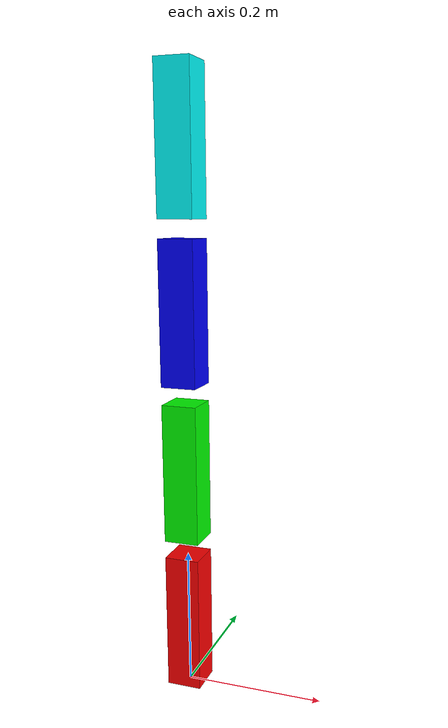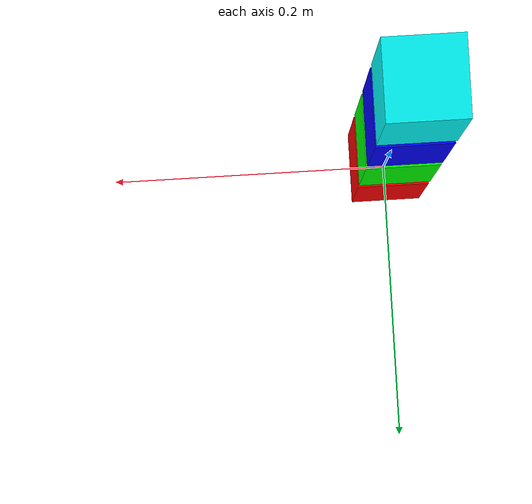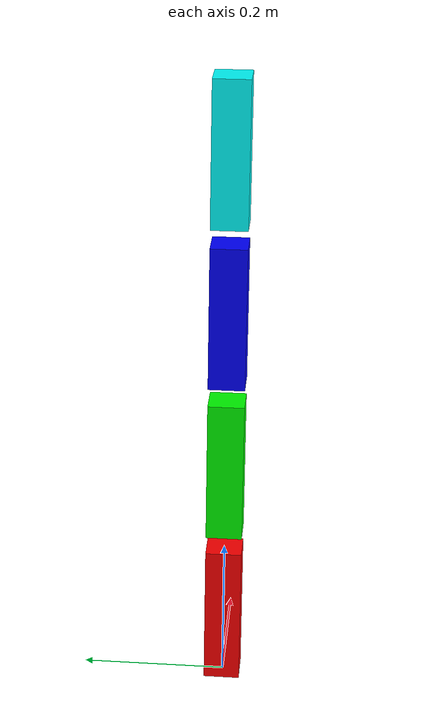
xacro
<?xml version="1.0"?>
<robot xmlns:xacro="http://www.ros.org/wiki/xacro" name="simple_manipulator">

<xacro:property name="width" value="0.05"/>
<xacro:property name="height" value="0.2"/>
<xacro:property name="mass" value="0.1"/>

    <link name="base_link">
        <inertial>
            <origin xyz="0.0 0.0 ${height/2}" rpy="0.0 0.0 0.0"/>
            <mass value="${mass}"/>
            <inertia ixx="1.0" ixy="0.0" ixz="0.0" iyy="1.0" iyz="0.0" izz="1.0"/>
        </inertial>
        <visual>
            <origin xyz="0.0 0.0 ${height/2}" rpy="0.0 0.0 0.0"/>
             <geometry>
                <box size="${width} ${width} ${height}"/>
             </geometry>
             <material name="base_link">
                <color rgba="1.0 0.0 0.0 1.0"/>
             </material>
        </visual>
        <collision>
            <origin xyz="0.0 0.0 ${height/2}" rpy="0.0 0.0 0.0"/>
            <geometry>
                <box size="${width} ${width} ${height}"/>
            </geometry>
        </collision>
    </link >

    <joint name="Joint1" type="revolute">
        <origin xyz="0.0 0.0 0.225" rpy="0.0 0.0 0.0"/>
        <parent link="base_link"/>
        <child link="Link1"/>
        <axis xyz="0.0 0.0 1.0"/>
        <limit lower="-3.14" upper="3.14" effort="30.0" velocity="1"/>
    </joint>

    <link name="Link1">
        <inertial>
            <origin xyz="0.0 0.0 ${height/2}" rpy="0.0 0.0 0.0"/>
            <mass value="${mass}"/>
            <inertia ixx="${mass/12*(width*width+width*width)}" ixy="0.0" ixz="0.0"
                     iyy="${mass/12*(width*width+width*width)}" iyz="0.0"
                     izz="${mass/12*(height*height+height*height)}"/>
        </inertial>
        <visual>
            <origin xyz="0.0 0.0 ${height/2}" rpy="0.0 0.0 0.0"/>
            <geometry>
                <box size="${width} ${width} ${height}"/>
            </geometry>
            <material name="link1">
                <color rgba="0.0 1.0 0.0 1.0"/>
            </material>
        </visual>
        <collision>
            <origin xyz="0.0 0.0 ${height/2}" rpy="0.0 0.0 0.0"/>
            <geometry>
                <box size="${width} ${width} ${height}"/>
            </geometry>
        </collision>
    </link>

    <joint name="Joint2" type="revolute">
        <origin xyz="0.0 0.0 0.225" rpy="0.0 0.0 0.0"/>
        <parent link="Link1"/>
        <child link="Link2"/>
        <axis xyz="1.0 0.0 0.0"/>
        <limit lower="-3.14" upper="3.14" effort="30" velocity="1"/>
    </joint>

    <link name="Link2">
        <inertial>
            <origin xyz="0.0 0.0 ${height/2}" rpy="0.0 0.0 0.0"/>
            <mass value="${mass}"/>
            <inertia ixx="${mass/12*(width*width+width*width)}" ixy="0.0" ixz="0.0"
                iyy="${mass/12*(width*width+width*width)}" iyz="0.0"
                izz="${mass/12*(height*height+height*height)}"/>
        </inertial>
        <visual>
            <origin xyz="0.0 0.0 ${height/2}" rpy="0.0 0.0 0.0"/>
            <geometry>
                <box size="${width} ${width} ${height}"/>
            </geometry>
            <material name="link2">
                <color rgba="0.0 0.0 1.0 1.0"/>
            </material>
        </visual>
        <collision>
            <origin xyz="0.0 0.0 ${height/2}" rpy="0.0 0.0 0.0"/>
            <geometry>
                <box size="${width} ${width} ${height}"/>
            </geometry>
        </collision>
    </link>

    <joint name="Joint3" type="revolute">
        <origin xyz="0.0 0.0 0.225" rpy="0.0 0.0 0.0"/>
        <parent link="Link2"/>
        <child link="Link3"/>
        <axis xyz="1.0 0.0 0.0"/>
        <limit lower="-3.14" upper="3.14" effort="30" velocity="1"/>
    </joint>

    <link name="Link3">
        <inertial>
            <origin xyz="0.0 0.0 ${height/2}" rpy="0.0 0.0 0.0"/>
            <mass value="${mass}"/>
            <inertia ixx="${mass/12*(width*width+width*width)}" ixy="0.0" ixz="0.0"
                iyy="${mass/12*(width*width+width*width)}" iyz="0.0"
                izz="${mass/12*(height*height+height*height)}"/>
        </inertial>
        <visual>
            <origin xyz="0.0 0.0 ${height/2}" rpy="0.0 0.0 0.0"/>
            <geometry>
                <box size="${width} ${width} ${height}"/>
            </geometry>
            <material name="link3">
                <color rgba="0.0 1.0 1.0 1.0"/>
            </material>
        </visual>
        <collision>
            <origin xyz="0.0 0.0 ${height/2}" rpy="0.0 0.0 0.0"/>
            <geometry>
                <box size="${width} ${width} ${height}"/>
            </geometry>
        </collision>
    </link>

</robot>
